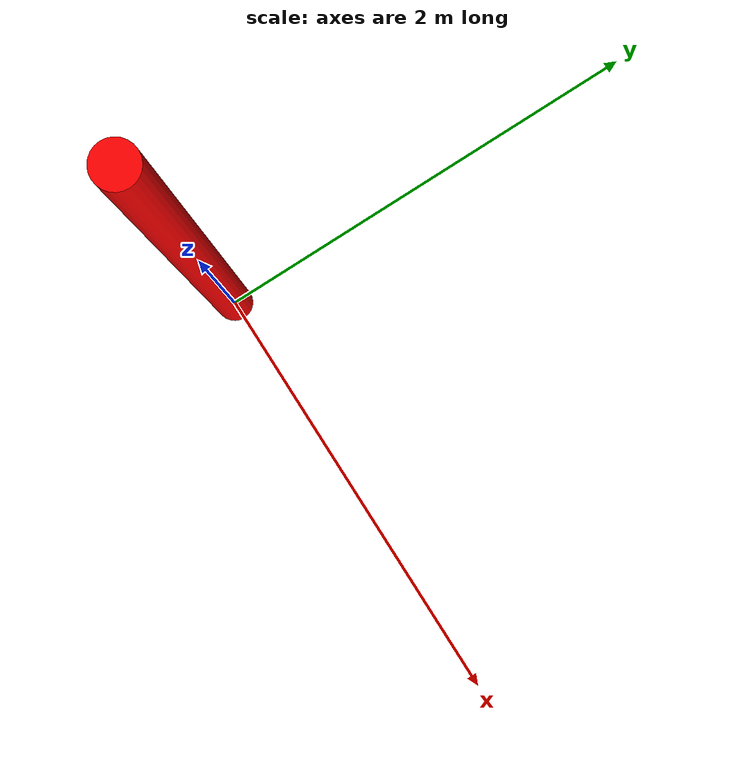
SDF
<?xml version="1.0" ?>
<sdf version="1.6">
  <model name="perching_pole_16cm_red">
    <static>true</static>
    <link name="pole_link">
      <pose>0 0 2.5 0 0 0</pose>
      <inertial>
        <pose>0 0 0 0 0 0</pose>
        <mass>1.0</mass>
        <inertia>
          <ixx>0.001</ixx>
          <ixy>0</ixy>
          <ixz>0</ixz>
          <iyy>0.001</iyy>
          <iyz>0</iyz>
          <izz>0.001</izz>
        </inertia>
      </inertial>
      <collision name="pole_collision">
        <pose>0 0 0 0 0 0</pose>
        <geometry>
          <cylinder>
            <radius>0.08</radius>
            <length>5.0</length>
          </cylinder>
        </geometry>
        <surface>
          <friction>
            <ode>
              <mu>100.0</mu>
              <mu2>10.0</mu2>
              <fdir1>0 0 1</fdir1>
            </ode>
            <torsional>
              <coefficient>1.0</coefficient>
              <use_patch_radius>false</use_patch_radius>
              <surface_radius>0.08</surface_radius>
              <ode>
                <slip>0.0</slip>
              </ode>
            </torsional>
          </friction>
          <bounce>
            <restitution_coefficient>0.0</restitution_coefficient>
            <threshold>0.001</threshold>
          </bounce>
          <contact>
            <ode>
              <kp>50000.0</kp>
              <kd>100.0</kd>
              <max_vel>0.01</max_vel>
              <min_depth>0.001</min_depth>
            </ode>
          </contact>
        </surface>
      </collision>
      <visual name="pole_visual">
        <pose>0 0 0 0 0 0</pose>
        <geometry>
          <cylinder>
            <radius>0.08</radius>
            <length>5.0</length>
          </cylinder>
        </geometry>
        <material>
          <ambient>1.0 0.0 0.0 1</ambient>
          <diffuse>1.0 0.0 0.0 1</diffuse>
          <specular>0.1 0.1 0.1 1</specular>
          <emissive>0.8 0.0 0.0 1</emissive>
        </material>
      </visual>
    </link>
  </model>
</sdf>
